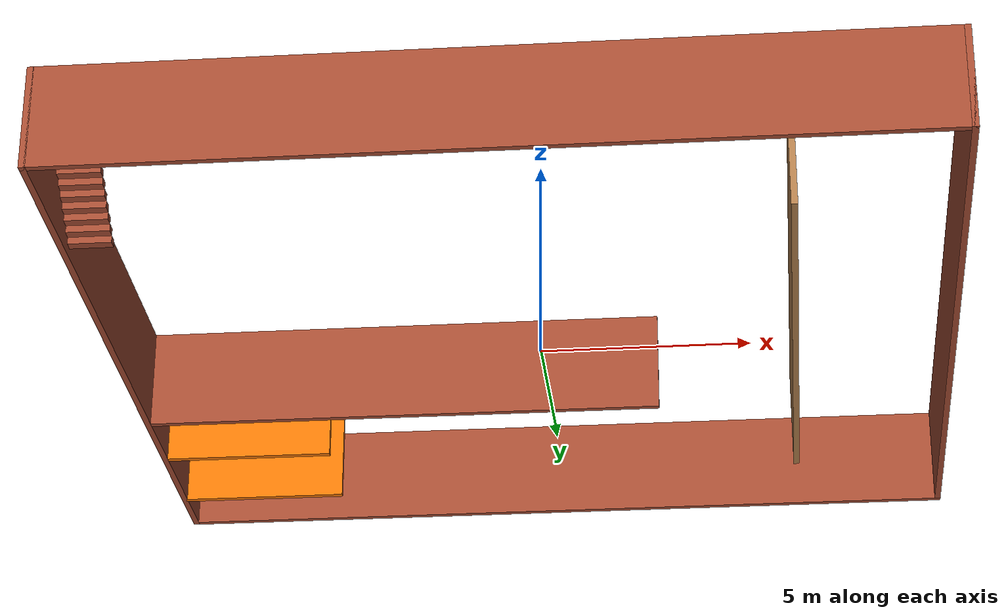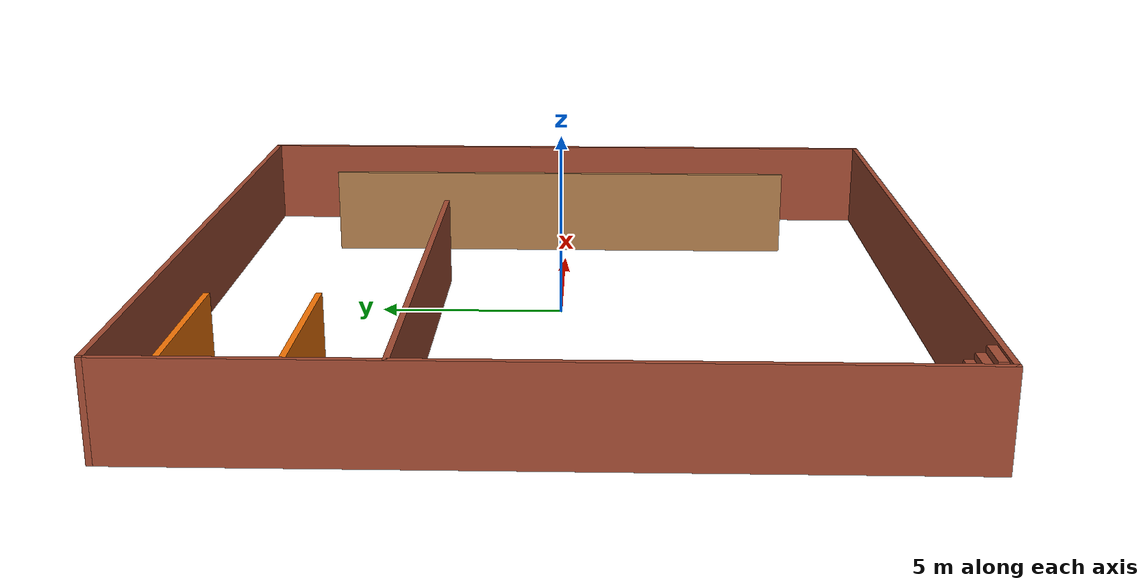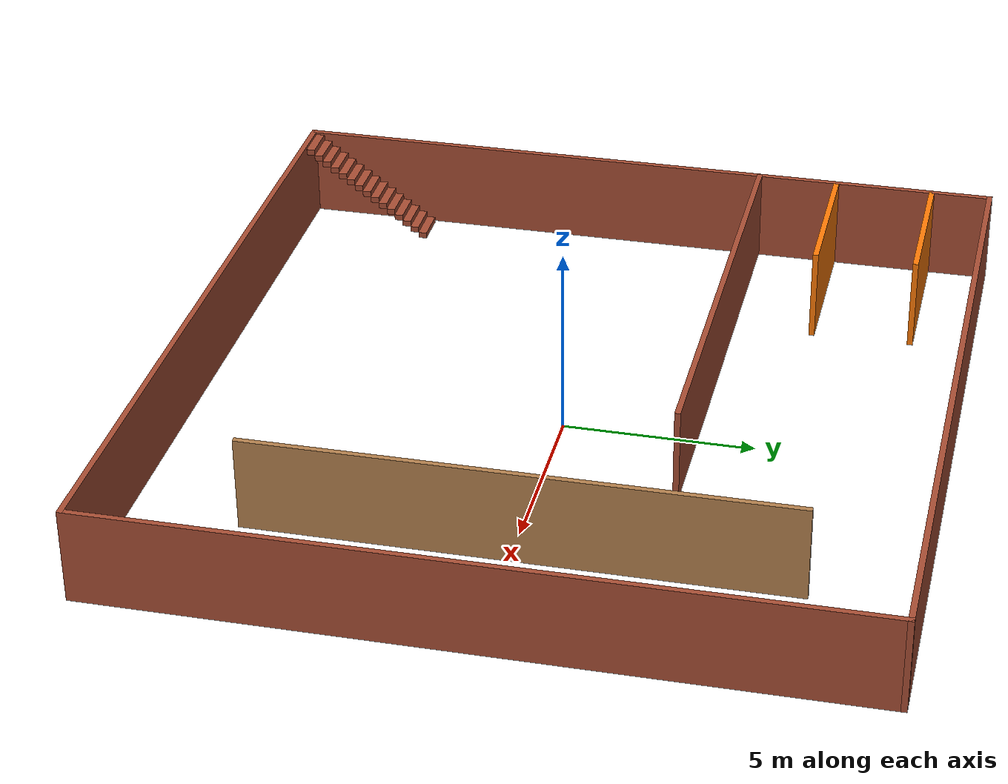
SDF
<?xml version='1.0'?>
<sdf version='1.7'>
  <model name='mppid'>
    <pose>-0.219007 0.100688 0 0 -0 0</pose>
    <link name='Stairs_0'>
      <visual name='Stairs_0_Visual_0'>
        <pose>-9.36464 -6.29035 0.083333 0 -0 0</pose>
        <geometry>
          <box>
            <size>1 0.233333 0.166667</size>
          </box>
        </geometry>
        <material>
          <script>
            <uri>file://media/materials/scripts/gazebo.material</uri>
            <name>Gazebo/Bricks</name>
          </script>
          <ambient>1 1 1 1</ambient>
        </material>
        <meta>
          <layer>0</layer>
        </meta>
      </visual>
      <collision name='Stairs_0_Collision_0'>
        <geometry>
          <box>
            <size>1 0.233333 0.166667</size>
          </box>
        </geometry>
        <pose>-9.36464 -6.29035 0.083333 0 -0 0</pose>
      </collision>
      <visual name='Stairs_0_Visual_1'>
        <pose>-9.36464 -6.52369 0.25 0 -0 0</pose>
        <geometry>
          <box>
            <size>1 0.233333 0.166667</size>
          </box>
        </geometry>
        <material>
          <script>
            <uri>file://media/materials/scripts/gazebo.material</uri>
            <name>Gazebo/Bricks</name>
          </script>
          <ambient>1 1 1 1</ambient>
        </material>
        <meta>
          <layer>0</layer>
        </meta>
      </visual>
      <collision name='Stairs_0_Collision_1'>
        <geometry>
          <box>
            <size>1 0.233333 0.166667</size>
          </box>
        </geometry>
        <pose>-9.36464 -6.52369 0.25 0 -0 0</pose>
      </collision>
      <visual name='Stairs_0_Visual_2'>
        <pose>-9.36464 -6.75702 0.416667 0 -0 0</pose>
        <geometry>
          <box>
            <size>1 0.233333 0.166667</size>
          </box>
        </geometry>
        <material>
          <script>
            <uri>file://media/materials/scripts/gazebo.material</uri>
            <name>Gazebo/Bricks</name>
          </script>
          <ambient>1 1 1 1</ambient>
        </material>
        <meta>
          <layer>0</layer>
        </meta>
      </visual>
      <collision name='Stairs_0_Collision_2'>
        <geometry>
          <box>
            <size>1 0.233333 0.166667</size>
          </box>
        </geometry>
        <pose>-9.36464 -6.75702 0.416667 0 -0 0</pose>
      </collision>
      <visual name='Stairs_0_Visual_3'>
        <pose>-9.36464 -6.99035 0.583333 0 -0 0</pose>
        <geometry>
          <box>
            <size>1 0.233333 0.166667</size>
          </box>
        </geometry>
        <material>
          <script>
            <uri>file://media/materials/scripts/gazebo.material</uri>
            <name>Gazebo/Bricks</name>
          </script>
          <ambient>1 1 1 1</ambient>
        </material>
        <meta>
          <layer>0</layer>
        </meta>
      </visual>
      <collision name='Stairs_0_Collision_3'>
        <geometry>
          <box>
            <size>1 0.233333 0.166667</size>
          </box>
        </geometry>
        <pose>-9.36464 -6.99035 0.583333 0 -0 0</pose>
      </collision>
      <visual name='Stairs_0_Visual_4'>
        <pose>-9.36464 -7.22368 0.75 0 -0 0</pose>
        <geometry>
          <box>
            <size>1 0.233333 0.166667</size>
          </box>
        </geometry>
        <material>
          <script>
            <uri>file://media/materials/scripts/gazebo.material</uri>
            <name>Gazebo/Bricks</name>
          </script>
          <ambient>1 1 1 1</ambient>
        </material>
        <meta>
          <layer>0</layer>
        </meta>
      </visual>
      <collision name='Stairs_0_Collision_4'>
        <geometry>
          <box>
            <size>1 0.233333 0.166667</size>
          </box>
        </geometry>
        <pose>-9.36464 -7.22368 0.75 0 -0 0</pose>
      </collision>
      <visual name='Stairs_0_Visual_5'>
        <pose>-9.36464 -7.45702 0.916667 0 -0 0</pose>
        <geometry>
          <box>
            <size>1 0.233333 0.166667</size>
          </box>
        </geometry>
        <material>
          <script>
            <uri>file://media/materials/scripts/gazebo.material</uri>
            <name>Gazebo/Bricks</name>
          </script>
          <ambient>1 1 1 1</ambient>
        </material>
        <meta>
          <layer>0</layer>
        </meta>
      </visual>
      <collision name='Stairs_0_Collision_5'>
        <geometry>
          <box>
            <size>1 0.233333 0.166667</size>
          </box>
        </geometry>
        <pose>-9.36464 -7.45702 0.916667 0 -0 0</pose>
      </collision>
      <visual name='Stairs_0_Visual_6'>
        <pose>-9.36464 -7.69035 1.08333 0 -0 0</pose>
        <geometry>
          <box>
            <size>1 0.233333 0.166667</size>
          </box>
        </geometry>
        <material>
          <script>
            <uri>file://media/materials/scripts/gazebo.material</uri>
            <name>Gazebo/Bricks</name>
          </script>
          <ambient>1 1 1 1</ambient>
        </material>
        <meta>
          <layer>0</layer>
        </meta>
      </visual>
      <collision name='Stairs_0_Collision_6'>
        <geometry>
          <box>
            <size>1 0.233333 0.166667</size>
          </box>
        </geometry>
        <pose>-9.36464 -7.69035 1.08333 0 -0 0</pose>
      </collision>
      <visual name='Stairs_0_Visual_7'>
        <pose>-9.36464 -7.92368 1.25 0 -0 0</pose>
        <geometry>
          <box>
            <size>1 0.233333 0.166667</size>
          </box>
        </geometry>
        <material>
          <script>
            <uri>file://media/materials/scripts/gazebo.material</uri>
            <name>Gazebo/Bricks</name>
          </script>
          <ambient>1 1 1 1</ambient>
        </material>
        <meta>
          <layer>0</layer>
        </meta>
      </visual>
      <collision name='Stairs_0_Collision_7'>
        <geometry>
          <box>
            <size>1 0.233333 0.166667</size>
          </box>
        </geometry>
        <pose>-9.36464 -7.92368 1.25 0 -0 0</pose>
      </collision>
      <visual name='Stairs_0_Visual_8'>
        <pose>-9.36464 -8.15702 1.41667 0 -0 0</pose>
        <geometry>
          <box>
            <size>1 0.233333 0.166667</size>
          </box>
        </geometry>
        <material>
          <script>
            <uri>file://media/materials/scripts/gazebo.material</uri>
            <name>Gazebo/Bricks</name>
          </script>
          <ambient>1 1 1 1</ambient>
        </material>
        <meta>
          <layer>0</layer>
        </meta>
      </visual>
      <collision name='Stairs_0_Collision_8'>
        <geometry>
          <box>
            <size>1 0.233333 0.166667</size>
          </box>
        </geometry>
        <pose>-9.36464 -8.15702 1.41667 0 -0 0</pose>
      </collision>
      <visual name='Stairs_0_Visual_9'>
        <pose>-9.36464 -8.39035 1.58333 0 -0 0</pose>
        <geometry>
          <box>
            <size>1 0.233333 0.166667</size>
          </box>
        </geometry>
        <material>
          <script>
            <uri>file://media/materials/scripts/gazebo.material</uri>
            <name>Gazebo/Bricks</name>
          </script>
          <ambient>1 1 1 1</ambient>
        </material>
        <meta>
          <layer>0</layer>
        </meta>
      </visual>
      <collision name='Stairs_0_Collision_9'>
        <geometry>
          <box>
            <size>1 0.233333 0.166667</size>
          </box>
        </geometry>
        <pose>-9.36464 -8.39035 1.58333 0 -0 0</pose>
      </collision>
      <visual name='Stairs_0_Visual_10'>
        <pose>-9.36464 -8.62369 1.75 0 -0 0</pose>
        <geometry>
          <box>
            <size>1 0.233333 0.166667</size>
          </box>
        </geometry>
        <material>
          <script>
            <uri>file://media/materials/scripts/gazebo.material</uri>
            <name>Gazebo/Bricks</name>
          </script>
          <ambient>1 1 1 1</ambient>
        </material>
        <meta>
          <layer>0</layer>
        </meta>
      </visual>
      <collision name='Stairs_0_Collision_10'>
        <geometry>
          <box>
            <size>1 0.233333 0.166667</size>
          </box>
        </geometry>
        <pose>-9.36464 -8.62369 1.75 0 -0 0</pose>
      </collision>
      <visual name='Stairs_0_Visual_11'>
        <pose>-9.36464 -8.85702 1.91667 0 -0 0</pose>
        <geometry>
          <box>
            <size>1 0.233333 0.166667</size>
          </box>
        </geometry>
        <material>
          <script>
            <uri>file://media/materials/scripts/gazebo.material</uri>
            <name>Gazebo/Bricks</name>
          </script>
          <ambient>1 1 1 1</ambient>
        </material>
        <meta>
          <layer>0</layer>
        </meta>
      </visual>
      <collision name='Stairs_0_Collision_11'>
        <geometry>
          <box>
            <size>1 0.233333 0.166667</size>
          </box>
        </geometry>
        <pose>-9.36464 -8.85702 1.91667 0 -0 0</pose>
      </collision>
      <visual name='Stairs_0_Visual_12'>
        <pose>-9.36464 -9.09035 2.08333 0 -0 0</pose>
        <geometry>
          <box>
            <size>1 0.233333 0.166667</size>
          </box>
        </geometry>
        <material>
          <script>
            <uri>file://media/materials/scripts/gazebo.material</uri>
            <name>Gazebo/Bricks</name>
          </script>
          <ambient>1 1 1 1</ambient>
        </material>
        <meta>
          <layer>0</layer>
        </meta>
      </visual>
      <collision name='Stairs_0_Collision_12'>
        <geometry>
          <box>
            <size>1 0.233333 0.166667</size>
          </box>
        </geometry>
        <pose>-9.36464 -9.09035 2.08333 0 -0 0</pose>
      </collision>
      <visual name='Stairs_0_Visual_13'>
        <pose>-9.36464 -9.32368 2.25 0 -0 0</pose>
        <geometry>
          <box>
            <size>1 0.233333 0.166667</size>
          </box>
        </geometry>
        <material>
          <script>
            <uri>file://media/materials/scripts/gazebo.material</uri>
            <name>Gazebo/Bricks</name>
          </script>
          <ambient>1 1 1 1</ambient>
        </material>
        <meta>
          <layer>0</layer>
        </meta>
      </visual>
      <collision name='Stairs_0_Collision_13'>
        <geometry>
          <box>
            <size>1 0.233333 0.166667</size>
          </box>
        </geometry>
        <pose>-9.36464 -9.32368 2.25 0 -0 0</pose>
      </collision>
      <visual name='Stairs_0_Visual_14'>
        <pose>-9.36464 -9.55702 2.41667 0 -0 0</pose>
        <geometry>
          <box>
            <size>1 0.233333 0.166667</size>
          </box>
        </geometry>
        <material>
          <script>
            <uri>file://media/materials/scripts/gazebo.material</uri>
            <name>Gazebo/Bricks</name>
          </script>
          <ambient>1 1 1 1</ambient>
        </material>
        <meta>
          <layer>0</layer>
        </meta>
      </visual>
      <collision name='Stairs_0_Collision_14'>
        <geometry>
          <box>
            <size>1 0.233333 0.166667</size>
          </box>
        </geometry>
        <pose>-9.36464 -9.55702 2.41667 0 -0 0</pose>
      </collision>
    </link>
    <link name='Wall_49'>
      <collision name='Wall_49_Collision'>
        <geometry>
          <box>
            <size>19.75 0.15 2.5</size>
          </box>
        </geometry>
        <pose>0 0 1.25 0 -0 0</pose>
      </collision>
      <visual name='Wall_49_Visual'>
        <pose>0 0 1.25 0 -0 0</pose>
        <geometry>
          <box>
            <size>19.75 0.15 2.5</size>
          </box>
        </geometry>
        <material>
          <script>
            <uri>file://media/materials/scripts/gazebo.material</uri>
            <name>Gazebo/Bricks</name>
          </script>
          <ambient>1 1 1 1</ambient>
        </material>
        <meta>
          <layer>0</layer>
        </meta>
      </visual>
      <pose>-10.05 0 0 0 -0 -1.5708</pose>
    </link>
    <link name='Wall_50'>
      <collision name='Wall_50_Collision'>
        <geometry>
          <box>
            <size>20.25 0.15 2.5</size>
          </box>
        </geometry>
        <pose>0 0 1.25 0 -0 0</pose>
      </collision>
      <visual name='Wall_50_Visual'>
        <pose>0 0 1.25 0 -0 0</pose>
        <geometry>
          <box>
            <size>20.25 0.15 2.5</size>
          </box>
        </geometry>
        <material>
          <script>
            <uri>file://media/materials/scripts/gazebo.material</uri>
            <name>Gazebo/Bricks</name>
          </script>
          <ambient>1 1 1 1</ambient>
        </material>
        <meta>
          <layer>0</layer>
        </meta>
      </visual>
      <pose>-0 -9.8 0 0 -0 0</pose>
    </link>
    <link name='Wall_51'>
      <collision name='Wall_51_Collision'>
        <geometry>
          <box>
            <size>19.75 0.15 2.5</size>
          </box>
        </geometry>
        <pose>0 0 1.25 0 -0 0</pose>
      </collision>
      <visual name='Wall_51_Visual'>
        <pose>0 0 1.25 0 -0 0</pose>
        <geometry>
          <box>
            <size>19.75 0.15 2.5</size>
          </box>
        </geometry>
        <material>
          <script>
            <uri>file://media/materials/scripts/gazebo.material</uri>
            <name>Gazebo/Bricks</name>
          </script>
          <ambient>1 1 1 1</ambient>
        </material>
        <meta>
          <layer>0</layer>
        </meta>
      </visual>
      <pose>10.05 0 0 0 -0 1.5708</pose>
    </link>
    <link name='Wall_52'>
      <collision name='Wall_52_Collision'>
        <geometry>
          <box>
            <size>20.25 0.15 2.5</size>
          </box>
        </geometry>
        <pose>0 0 1.25 0 -0 0</pose>
      </collision>
      <visual name='Wall_52_Visual'>
        <pose>0 0 1.25 0 -0 0</pose>
        <geometry>
          <box>
            <size>20.25 0.15 2.5</size>
          </box>
        </geometry>
        <material>
          <script>
            <uri>file://media/materials/scripts/gazebo.material</uri>
            <name>Gazebo/Bricks</name>
          </script>
          <ambient>1 1 1 1</ambient>
        </material>
        <meta>
          <layer>0</layer>
        </meta>
      </visual>
      <pose>-0 9.8 0 0 -0 3.14159</pose>
    </link>
    <link name='Wall_56'>
      <collision name='Wall_56_Collision'>
        <geometry>
          <box>
            <size>14 0.15 2.5</size>
          </box>
        </geometry>
        <pose>0 0 1.25 0 -0 0</pose>
      </collision>
      <visual name='Wall_56_Visual'>
        <pose>0 0 1.25 0 -0 0</pose>
        <geometry>
          <box>
            <size>14 0.15 2.5</size>
          </box>
        </geometry>
        <material>
          <script>
            <uri>file://media/materials/scripts/gazebo.material</uri>
            <name>Gazebo/Wood</name>
          </script>
          <ambient>1 1 1 1</ambient>
        </material>
        <meta>
          <layer>0</layer>
        </meta>
      </visual>
      <pose>6.29801 0.125079 0 0 -0 -1.5708</pose>
    </link>
    <link name='Wall_59'>
      <collision name='Wall_59_Collision'>
        <geometry>
          <box>
            <size>13 0.15 2.5</size>
          </box>
        </geometry>
        <pose>0 0 1.25 0 -0 0</pose>
      </collision>
      <visual name='Wall_59_Visual'>
        <pose>0 0 1.25 0 -0 0</pose>
        <geometry>
          <box>
            <size>13 0.15 2.5</size>
          </box>
        </geometry>
        <material>
          <script>
            <uri>file://media/materials/scripts/gazebo.material</uri>
            <name>Gazebo/Bricks</name>
          </script>
          <ambient>0.435294 0.796078 0.67451 1</ambient>
        </material>
        <meta>
          <layer>0</layer>
        </meta>
      </visual>
      <pose>-3.60883 3.33079 0 0 -0 0</pose>
    </link>
    <link name='Wall_61'>
      <collision name='Wall_61_Collision'>
        <geometry>
          <box>
            <size>4.25 0.15 2.5</size>
          </box>
        </geometry>
        <pose>0 0 1.25 0 -0 0</pose>
      </collision>
      <visual name='Wall_61_Visual'>
        <pose>0 0 1.25 0 -0 0</pose>
        <geometry>
          <box>
            <size>4.25 0.15 2.5</size>
          </box>
        </geometry>
        <material>
          <script>
            <uri>file://media/materials/scripts/gazebo.material</uri>
            <name>Gazebo/Grey</name>
          </script>
          <ambient>0.996078 0.47451 0.0196078 1</ambient>
        </material>
        <meta>
          <layer>0</layer>
        </meta>
      </visual>
      <pose>-7.92299 8.19759 0 0 -0 0</pose>
    </link>
    <link name='Wall_64'>
      <collision name='Wall_64_Collision'>
        <geometry>
          <box>
            <size>4.25 0.15 2.5</size>
          </box>
        </geometry>
        <pose>0 0 1.25 0 -0 0</pose>
      </collision>
      <visual name='Wall_64_Visual'>
        <pose>0 0 1.25 0 -0 0</pose>
        <geometry>
          <box>
            <size>4.25 0.15 2.5</size>
          </box>
        </geometry>
        <material>
          <script>
            <uri>file://media/materials/scripts/gazebo.material</uri>
            <name>Gazebo/Grey</name>
          </script>
          <ambient>0.996078 0.47451 0.0196078 1</ambient>
        </material>
        <meta>
          <layer>0</layer>
        </meta>
      </visual>
      <pose>-7.86216 5.52085 0 0 -0 0</pose>
    </link>
    <static>1</static>
  </model>
</sdf>
